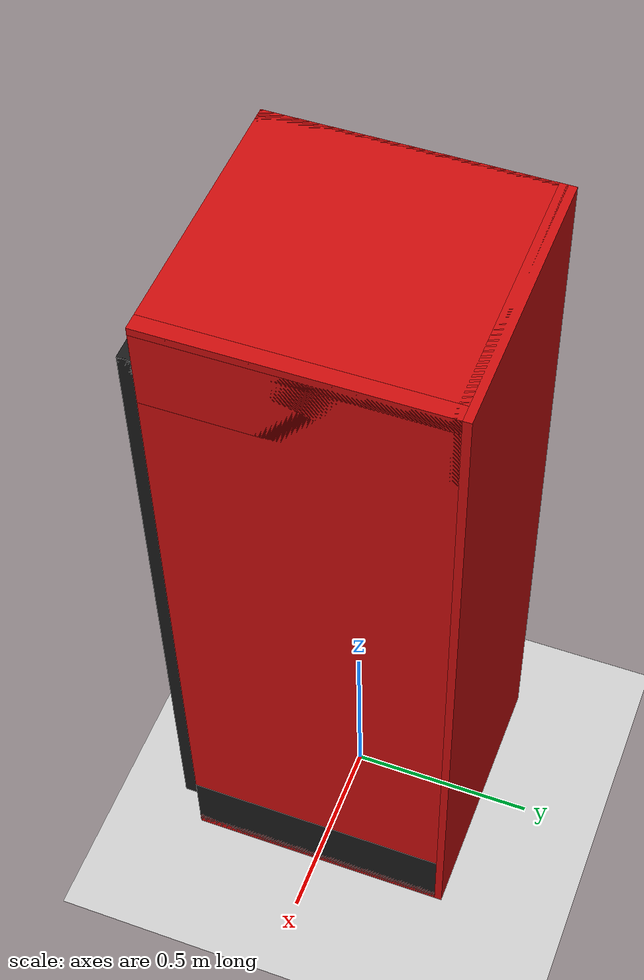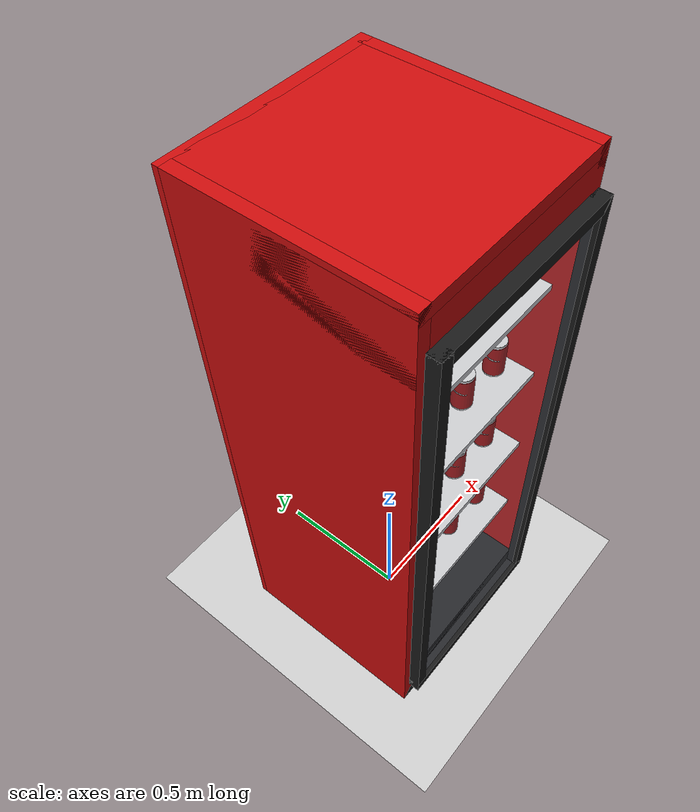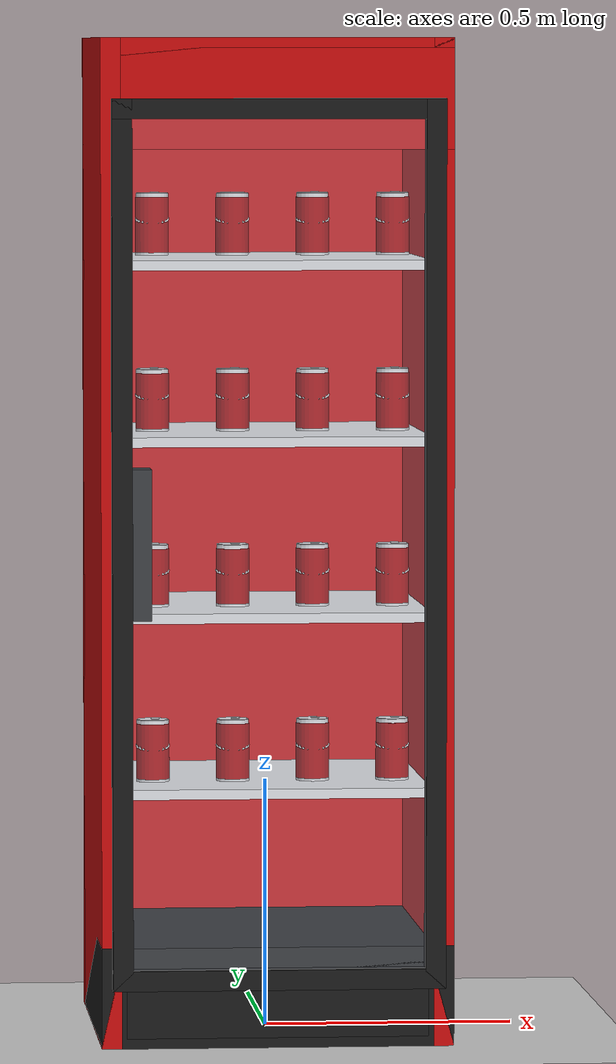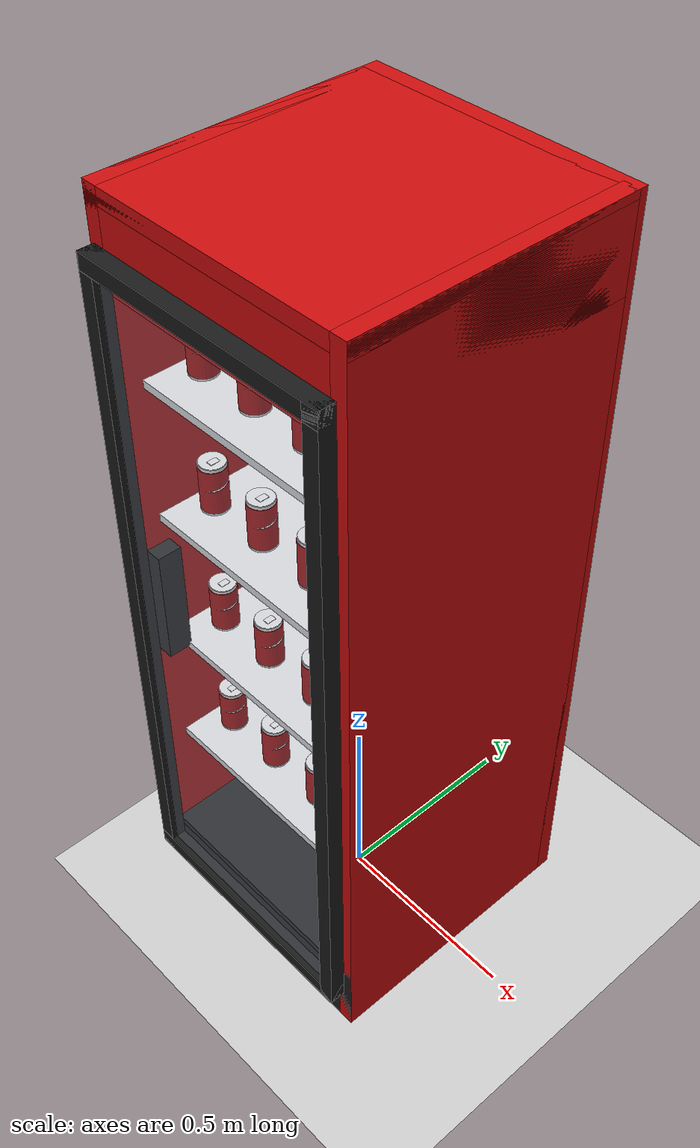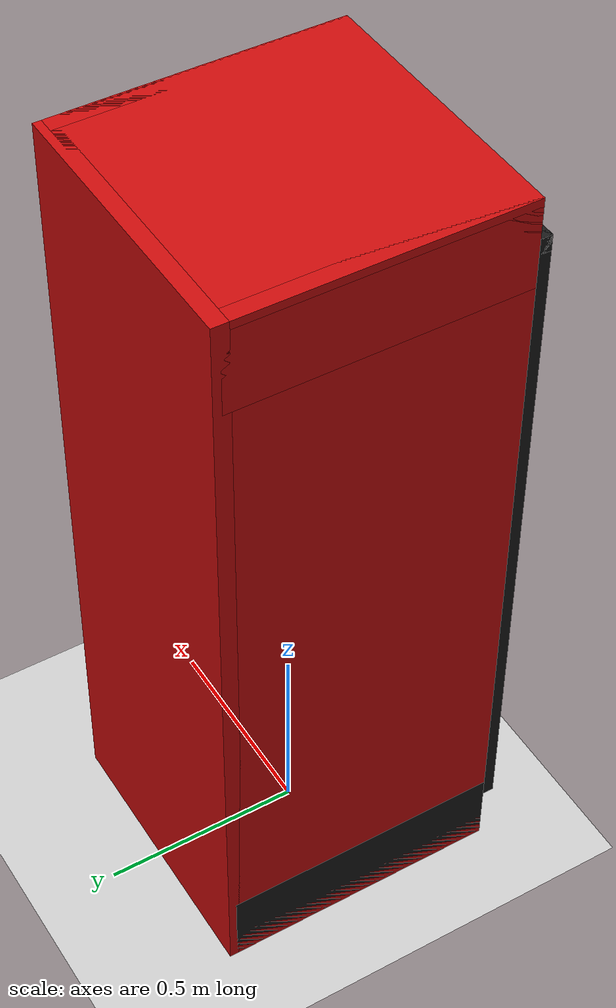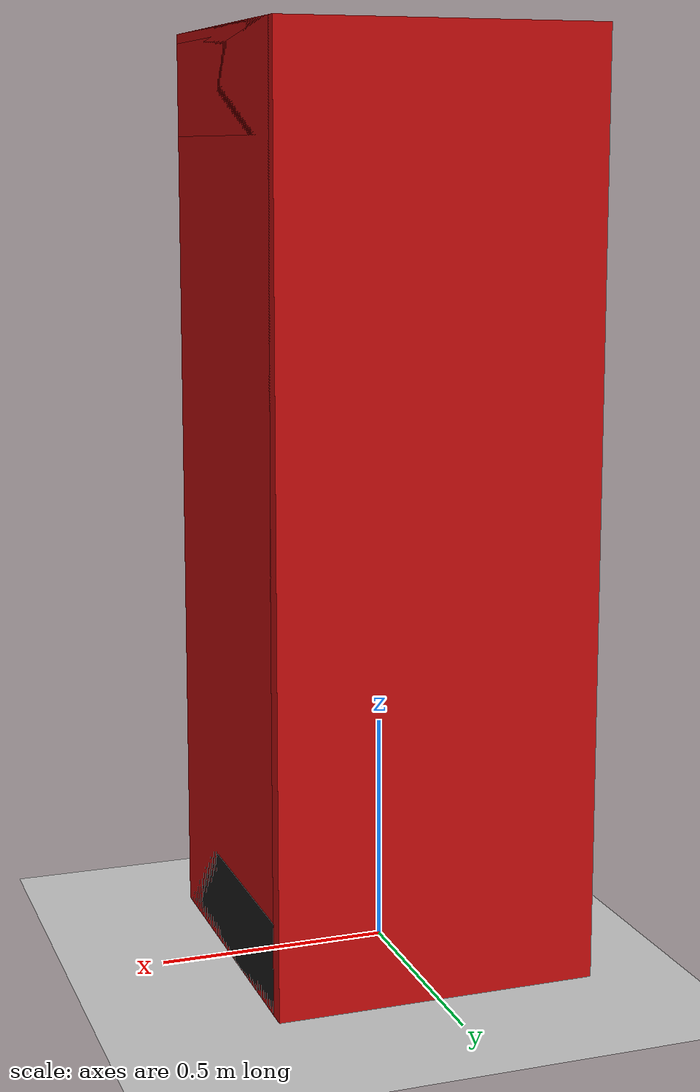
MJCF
<mujoco model="beverage_fridge">
  <compiler angle="degree" coordinate="local"/>
  <option timestep="0.01" gravity="0 0 -9.81"/>

  <visual>
    <headlight ambient="0.6 0.6 0.6"/>
    <global offwidth="1920" offheight="1080"/>
  </visual>

  <asset>
    <texture type="skybox" builtin="gradient" rgb1="0.9 0.9 1" rgb2="1 1 1" width="512" height="512"/>

    <!-- Materials -->
    <!-- Optimized Materials for Realistic Look -->
    <!-- Red Paint: High gloss, slightly metallic automotive finish -->
    <material name="red_paint" rgba="0.8 0.05 0.05 1" specular="0.7" shininess="0.9" reflectance="0.2"/>
    <!-- Black Plastic: Matte/Satin finish for trims -->
    <material name="black_plastic" rgba="0.1 0.1 0.1 1" specular="0.3" shininess="0.3" roughness="0.5"/>
    <!-- Glass: Highly transparent, reflective, slight blue tint -->
    <material name="glass" rgba="0.85 0.9 1 0.2" specular="0.9" shininess="0.95" reflectance="0.3"/>
    <!-- Metal Shelf: Chrome/Steel look, high specular and reflectance -->
    <material name="metal_shelf" rgba="0.9 0.9 0.9 1" specular="0.9" shininess="0.8" reflectance="0.5"/>
    <!-- White Plastic: Clean, glossy interior lining -->
    <material name="white_plastic" rgba="0.95 0.95 0.95 1" specular="0.5" shininess="0.6" reflectance="0.1"/>

    <!-- Drink Materials -->
    <material name="coke_can" rgba="0.8 0 0 1" specular="0.8" shininess="0.8"/>
    <material name="sprite_bottle" rgba="0 0.6 0 0.8" specular="0.9" shininess="0.9"/>
    <material name="water_bottle" rgba="0.7 0.7 1 0.5" specular="0.9" shininess="0.9"/>
    <material name="orange_juice" rgba="1 0.5 0 1" specular="0.1" shininess="0.1"/>

    <!-- New Coke Can Assets -->
    <texture name="can_pattern" type="2d" builtin="checker" rgb1="0.85 0 0" rgb2="0.75 0 0" width="512" height="512" mark="cross" markrgb="0.8 0.8 0.8"/>
    <material name="coke_red" texture="can_pattern" texuniform="true" rgba="0.85 0.0 0.0 1" specular="0.7" shininess="0.8"/>
    <material name="aluminum" rgba="0.9 0.9 0.9 1" specular="0.9" shininess="0.9"/>
    <material name="logo_white" rgba="0.95 0.95 0.95 1" specular="0.5" shininess="0.5"/>
  </asset>

  <actuator>
    <!-- Optimized: gear=57.3 maps 0-120 input to 0-120 degrees (approx 2.1 rad) -->
    <!-- Scaled kp down to 0.15 to maintain effective stiffness (approx 500) with high gear ratio -->
    <position name="door_opener" joint="door_hinge" kp="0.15" ctrlrange="0 120" gear="57.29578"/>
  </actuator>

  <worldbody>
    <light pos="2 2 4" dir="-1 -1 -1" diffuse="0.8 0.8 0.8"/>
    <geom name="floor" type="plane" size="5 5 0.1" material="white_plastic" rgba="0.8 0.8 0.8 1"/>

    <!-- Fridge Root -->
    <body name="fridge" pos="0 0 0">
      <!-- Cabinet Dimensions: 0.7m width, 0.7m depth, 2.0m height -->
      <!-- Center of fridge is at (0,0,1) roughly -->

      <!-- Back Panel -->
      <geom name="back" type="box" size="0.35 0.02 1.0" pos="0 0.35 1.0" material="red_paint"/>

      <!-- Side Panels -->
      <geom name="left_side" type="box" size="0.02 0.35 1.0" pos="-0.33 0 1.0" material="red_paint"/>
      <geom name="right_side" type="box" size="0.02 0.35 1.0" pos="0.33 0 1.0" material="red_paint"/>

      <!-- Top Panel -->
      <geom name="top" type="box" size="0.35 0.35 0.02" pos="0 0 1.98" material="red_paint"/>

      <!-- Bottom Panel (Base/Compressor area) -->
      <geom name="bottom" type="box" size="0.35 0.35 0.1" pos="0 0 0.1" material="black_plastic"/>

      <!-- Top Header (Logo area) -->
      <geom name="header" type="box" size="0.35 0.35 0.1" pos="0 0 1.88" material="red_paint"/>

      <!-- Vent Grill (Visual) -->
      <geom name="vent" type="box" size="0.3 0.01 0.08" pos="0 -0.34 0.1" material="black_plastic"/>

      <!-- Shelves -->
      <!-- Shelf 1 (Bottom) -->
      <geom name="shelf1" type="box" size="0.31 0.3 0.01" pos="0 0 0.5" material="metal_shelf"/>
      <!-- Shelf 2 -->
      <geom name="shelf2" type="box" size="0.31 0.3 0.01" pos="0 0 0.85" material="metal_shelf"/>
      <!-- Shelf 3 -->
      <geom name="shelf3" type="box" size="0.31 0.3 0.01" pos="0 0 1.2" material="metal_shelf"/>
      <!-- Shelf 4 -->
      <geom name="shelf4" type="box" size="0.31 0.3 0.01" pos="0 0 1.55" material="metal_shelf"/>

      <!-- Glass Door -->
      <!-- Moved door slightly forward (y=-0.375) to prevent collision with fridge cabinet front (y=-0.35) -->
      <body name="door" pos="0.33 -0.375 1.0">
        <!-- Added stiffness to keep door closed by default (spring-loaded hinge effect) -->
        <!-- Optimized: Increased damping (8.0) for smooth motion and stiffness (12.0) for firm closing -->
        <joint name="door_hinge" type="hinge" axis="0 0 1" pos="0 0 0" range="0 120" damping="8.0" stiffness="12" springref="0"/>

        <!-- Door Frame -->
        <!-- Left vertical frame (hinge side) -->
        <geom name="door_frame_left" type="box" size="0.02 0.02 0.88" pos="-0.02 0 0" material="black_plastic"/>
        <!-- Right vertical frame -->
        <geom name="door_frame_right" type="box" size="0.02 0.02 0.88" pos="-0.64 0 0" material="black_plastic"/>
        <!-- Top horizontal frame -->
        <geom name="door_frame_top" type="box" size="0.33 0.02 0.02" pos="-0.33 0 0.86" material="black_plastic"/>
        <!-- Bottom horizontal frame -->
        <geom name="door_frame_bottom" type="box" size="0.33 0.02 0.02" pos="-0.33 0 -0.86" material="black_plastic"/>

        <!-- Glass Pane -->
        <geom name="door_glass" type="box" size="0.31 0.005 0.84" pos="-0.33 0 0" material="glass"/>

        <!-- Handle -->
        <geom name="handle" type="box" size="0.02 0.03 0.15" pos="-0.6 0.05 0" material="black_plastic"/>
      </body>
    </body>

        <!-- Beverages (Generated Grid) -->

    <!-- Shelf 1 -->
        <body name="coke_1" pos="-0.240 -0.200 0.580">
      <freejoint />
      <geom name="can_bottom_rim_1" type="cylinder" size="0.033 0.0025" pos="0 0 -0.059" material="aluminum" mass="0.02" />
      <geom name="can_middle_1" type="cylinder" size="0.033 0.055" pos="0 0 -0.0015" material="coke_red" mass="0.30" />
      <geom name="can_top_rim_1" type="cylinder" size="0.032 0.004" pos="0 0 0.0575" material="aluminum" mass="0.02" />
      <geom name="logo_strip_1" type="ellipsoid" size="0.034 0.034 0.015" pos="0 0 0.01" euler="15 0 0" material="logo_white" contype="0" conaffinity="0" mass="0" />
      <geom name="can_top_1" type="cylinder" size="0.031 0.001" pos="0 0 0.0616" material="aluminum" contype="0" conaffinity="0" mass="0.005" />
      <geom name="pull_tab_1" type="box" size="0.008 0.012 0.001" pos="0.005 0 0.063" material="aluminum" contype="0" conaffinity="0" mass="0.001" />
    </body>
    <body name="coke_2" pos="-0.080 -0.200 0.580">
      <freejoint />
      <geom name="can_bottom_rim_2" type="cylinder" size="0.033 0.0025" pos="0 0 -0.059" material="aluminum" mass="0.02" />
      <geom name="can_middle_2" type="cylinder" size="0.033 0.055" pos="0 0 -0.0015" material="coke_red" mass="0.30" />
      <geom name="can_top_rim_2" type="cylinder" size="0.032 0.004" pos="0 0 0.0575" material="aluminum" mass="0.02" />
      <geom name="logo_strip_2" type="ellipsoid" size="0.034 0.034 0.015" pos="0 0 0.01" euler="15 0 0" material="logo_white" contype="0" conaffinity="0" mass="0" />
      <geom name="can_top_2" type="cylinder" size="0.031 0.001" pos="0 0 0.0616" material="aluminum" contype="0" conaffinity="0" mass="0.005" />
      <geom name="pull_tab_2" type="box" size="0.008 0.012 0.001" pos="0.005 0 0.063" material="aluminum" contype="0" conaffinity="0" mass="0.001" />
    </body>
    <body name="coke_3" pos="0.080 -0.200 0.580">
      <freejoint />
      <geom name="can_bottom_rim_3" type="cylinder" size="0.033 0.0025" pos="0 0 -0.059" material="aluminum" mass="0.02" />
      <geom name="can_middle_3" type="cylinder" size="0.033 0.055" pos="0 0 -0.0015" material="coke_red" mass="0.30" />
      <geom name="can_top_rim_3" type="cylinder" size="0.032 0.004" pos="0 0 0.0575" material="aluminum" mass="0.02" />
      <geom name="logo_strip_3" type="ellipsoid" size="0.034 0.034 0.015" pos="0 0 0.01" euler="15 0 0" material="logo_white" contype="0" conaffinity="0" mass="0" />
      <geom name="can_top_3" type="cylinder" size="0.031 0.001" pos="0 0 0.0616" material="aluminum" contype="0" conaffinity="0" mass="0.005" />
      <geom name="pull_tab_3" type="box" size="0.008 0.012 0.001" pos="0.005 0 0.063" material="aluminum" contype="0" conaffinity="0" mass="0.001" />
    </body>
    <body name="coke_4" pos="0.240 -0.200 0.580">
      <freejoint />
      <geom name="can_bottom_rim_4" type="cylinder" size="0.033 0.0025" pos="0 0 -0.059" material="aluminum" mass="0.02" />
      <geom name="can_middle_4" type="cylinder" size="0.033 0.055" pos="0 0 -0.0015" material="coke_red" mass="0.30" />
      <geom name="can_top_rim_4" type="cylinder" size="0.032 0.004" pos="0 0 0.0575" material="aluminum" mass="0.02" />
      <geom name="logo_strip_4" type="ellipsoid" size="0.034 0.034 0.015" pos="0 0 0.01" euler="15 0 0" material="logo_white" contype="0" conaffinity="0" mass="0" />
      <geom name="can_top_4" type="cylinder" size="0.031 0.001" pos="0 0 0.0616" material="aluminum" contype="0" conaffinity="0" mass="0.005" />
      <geom name="pull_tab_4" type="box" size="0.008 0.012 0.001" pos="0.005 0 0.063" material="aluminum" contype="0" conaffinity="0" mass="0.001" />
    </body>
    <body name="coke_5" pos="-0.240 -0.200 0.930">
      <freejoint />
      <geom name="can_bottom_rim_5" type="cylinder" size="0.033 0.0025" pos="0 0 -0.059" material="aluminum" mass="0.02" />
      <geom name="can_middle_5" type="cylinder" size="0.033 0.055" pos="0 0 -0.0015" material="coke_red" mass="0.30" />
      <geom name="can_top_rim_5" type="cylinder" size="0.032 0.004" pos="0 0 0.0575" material="aluminum" mass="0.02" />
      <geom name="logo_strip_5" type="ellipsoid" size="0.034 0.034 0.015" pos="0 0 0.01" euler="15 0 0" material="logo_white" contype="0" conaffinity="0" mass="0" />
      <geom name="can_top_5" type="cylinder" size="0.031 0.001" pos="0 0 0.0616" material="aluminum" contype="0" conaffinity="0" mass="0.005" />
      <geom name="pull_tab_5" type="box" size="0.008 0.012 0.001" pos="0.005 0 0.063" material="aluminum" contype="0" conaffinity="0" mass="0.001" />
    </body>
    <body name="coke_6" pos="-0.080 -0.200 0.930">
      <freejoint />
      <geom name="can_bottom_rim_6" type="cylinder" size="0.033 0.0025" pos="0 0 -0.059" material="aluminum" mass="0.02" />
      <geom name="can_middle_6" type="cylinder" size="0.033 0.055" pos="0 0 -0.0015" material="coke_red" mass="0.30" />
      <geom name="can_top_rim_6" type="cylinder" size="0.032 0.004" pos="0 0 0.0575" material="aluminum" mass="0.02" />
      <geom name="logo_strip_6" type="ellipsoid" size="0.034 0.034 0.015" pos="0 0 0.01" euler="15 0 0" material="logo_white" contype="0" conaffinity="0" mass="0" />
      <geom name="can_top_6" type="cylinder" size="0.031 0.001" pos="0 0 0.0616" material="aluminum" contype="0" conaffinity="0" mass="0.005" />
      <geom name="pull_tab_6" type="box" size="0.008 0.012 0.001" pos="0.005 0 0.063" material="aluminum" contype="0" conaffinity="0" mass="0.001" />
    </body>
    <body name="coke_7" pos="0.080 -0.200 0.930">
      <freejoint />
      <geom name="can_bottom_rim_7" type="cylinder" size="0.033 0.0025" pos="0 0 -0.059" material="aluminum" mass="0.02" />
      <geom name="can_middle_7" type="cylinder" size="0.033 0.055" pos="0 0 -0.0015" material="coke_red" mass="0.30" />
      <geom name="can_top_rim_7" type="cylinder" size="0.032 0.004" pos="0 0 0.0575" material="aluminum" mass="0.02" />
      <geom name="logo_strip_7" type="ellipsoid" size="0.034 0.034 0.015" pos="0 0 0.01" euler="15 0 0" material="logo_white" contype="0" conaffinity="0" mass="0" />
      <geom name="can_top_7" type="cylinder" size="0.031 0.001" pos="0 0 0.0616" material="aluminum" contype="0" conaffinity="0" mass="0.005" />
      <geom name="pull_tab_7" type="box" size="0.008 0.012 0.001" pos="0.005 0 0.063" material="aluminum" contype="0" conaffinity="0" mass="0.001" />
    </body>
    <body name="coke_8" pos="0.240 -0.200 0.930">
      <freejoint />
      <geom name="can_bottom_rim_8" type="cylinder" size="0.033 0.0025" pos="0 0 -0.059" material="aluminum" mass="0.02" />
      <geom name="can_middle_8" type="cylinder" size="0.033 0.055" pos="0 0 -0.0015" material="coke_red" mass="0.30" />
      <geom name="can_top_rim_8" type="cylinder" size="0.032 0.004" pos="0 0 0.0575" material="aluminum" mass="0.02" />
      <geom name="logo_strip_8" type="ellipsoid" size="0.034 0.034 0.015" pos="0 0 0.01" euler="15 0 0" material="logo_white" contype="0" conaffinity="0" mass="0" />
      <geom name="can_top_8" type="cylinder" size="0.031 0.001" pos="0 0 0.0616" material="aluminum" contype="0" conaffinity="0" mass="0.005" />
      <geom name="pull_tab_8" type="box" size="0.008 0.012 0.001" pos="0.005 0 0.063" material="aluminum" contype="0" conaffinity="0" mass="0.001" />
    </body>
    <body name="coke_9" pos="-0.240 -0.200 1.280">
      <freejoint />
      <geom name="can_bottom_rim_9" type="cylinder" size="0.033 0.0025" pos="0 0 -0.059" material="aluminum" mass="0.02" />
      <geom name="can_middle_9" type="cylinder" size="0.033 0.055" pos="0 0 -0.0015" material="coke_red" mass="0.30" />
      <geom name="can_top_rim_9" type="cylinder" size="0.032 0.004" pos="0 0 0.0575" material="aluminum" mass="0.02" />
      <geom name="logo_strip_9" type="ellipsoid" size="0.034 0.034 0.015" pos="0 0 0.01" euler="15 0 0" material="logo_white" contype="0" conaffinity="0" mass="0" />
      <geom name="can_top_9" type="cylinder" size="0.031 0.001" pos="0 0 0.0616" material="aluminum" contype="0" conaffinity="0" mass="0.005" />
      <geom name="pull_tab_9" type="box" size="0.008 0.012 0.001" pos="0.005 0 0.063" material="aluminum" contype="0" conaffinity="0" mass="0.001" />
    </body>
    <body name="coke_10" pos="-0.080 -0.200 1.280">
      <freejoint />
      <geom name="can_bottom_rim_10" type="cylinder" size="0.033 0.0025" pos="0 0 -0.059" material="aluminum" mass="0.02" />
      <geom name="can_middle_10" type="cylinder" size="0.033 0.055" pos="0 0 -0.0015" material="coke_red" mass="0.30" />
      <geom name="can_top_rim_10" type="cylinder" size="0.032 0.004" pos="0 0 0.0575" material="aluminum" mass="0.02" />
      <geom name="logo_strip_10" type="ellipsoid" size="0.034 0.034 0.015" pos="0 0 0.01" euler="15 0 0" material="logo_white" contype="0" conaffinity="0" mass="0" />
      <geom name="can_top_10" type="cylinder" size="0.031 0.001" pos="0 0 0.0616" material="aluminum" contype="0" conaffinity="0" mass="0.005" />
      <geom name="pull_tab_10" type="box" size="0.008 0.012 0.001" pos="0.005 0 0.063" material="aluminum" contype="0" conaffinity="0" mass="0.001" />
    </body>
    <body name="coke_11" pos="0.080 -0.200 1.280">
      <freejoint />
      <geom name="can_bottom_rim_11" type="cylinder" size="0.033 0.0025" pos="0 0 -0.059" material="aluminum" mass="0.02" />
      <geom name="can_middle_11" type="cylinder" size="0.033 0.055" pos="0 0 -0.0015" material="coke_red" mass="0.30" />
      <geom name="can_top_rim_11" type="cylinder" size="0.032 0.004" pos="0 0 0.0575" material="aluminum" mass="0.02" />
      <geom name="logo_strip_11" type="ellipsoid" size="0.034 0.034 0.015" pos="0 0 0.01" euler="15 0 0" material="logo_white" contype="0" conaffinity="0" mass="0" />
      <geom name="can_top_11" type="cylinder" size="0.031 0.001" pos="0 0 0.0616" material="aluminum" contype="0" conaffinity="0" mass="0.005" />
      <geom name="pull_tab_11" type="box" size="0.008 0.012 0.001" pos="0.005 0 0.063" material="aluminum" contype="0" conaffinity="0" mass="0.001" />
    </body>
    <body name="coke_12" pos="0.240 -0.200 1.280">
      <freejoint />
      <geom name="can_bottom_rim_12" type="cylinder" size="0.033 0.0025" pos="0 0 -0.059" material="aluminum" mass="0.02" />
      <geom name="can_middle_12" type="cylinder" size="0.033 0.055" pos="0 0 -0.0015" material="coke_red" mass="0.30" />
      <geom name="can_top_rim_12" type="cylinder" size="0.032 0.004" pos="0 0 0.0575" material="aluminum" mass="0.02" />
      <geom name="logo_strip_12" type="ellipsoid" size="0.034 0.034 0.015" pos="0 0 0.01" euler="15 0 0" material="logo_white" contype="0" conaffinity="0" mass="0" />
      <geom name="can_top_12" type="cylinder" size="0.031 0.001" pos="0 0 0.0616" material="aluminum" contype="0" conaffinity="0" mass="0.005" />
      <geom name="pull_tab_12" type="box" size="0.008 0.012 0.001" pos="0.005 0 0.063" material="aluminum" contype="0" conaffinity="0" mass="0.001" />
    </body>
    <body name="coke_13" pos="-0.240 -0.200 1.630">
      <freejoint />
      <geom name="can_bottom_rim_13" type="cylinder" size="0.033 0.0025" pos="0 0 -0.059" material="aluminum" mass="0.02" />
      <geom name="can_middle_13" type="cylinder" size="0.033 0.055" pos="0 0 -0.0015" material="coke_red" mass="0.30" />
      <geom name="can_top_rim_13" type="cylinder" size="0.032 0.004" pos="0 0 0.0575" material="aluminum" mass="0.02" />
      <geom name="logo_strip_13" type="ellipsoid" size="0.034 0.034 0.015" pos="0 0 0.01" euler="15 0 0" material="logo_white" contype="0" conaffinity="0" mass="0" />
      <geom name="can_top_13" type="cylinder" size="0.031 0.001" pos="0 0 0.0616" material="aluminum" contype="0" conaffinity="0" mass="0.005" />
      <geom name="pull_tab_13" type="box" size="0.008 0.012 0.001" pos="0.005 0 0.063" material="aluminum" contype="0" conaffinity="0" mass="0.001" />
    </body>
    <body name="coke_14" pos="-0.080 -0.200 1.630">
      <freejoint />
      <geom name="can_bottom_rim_14" type="cylinder" size="0.033 0.0025" pos="0 0 -0.059" material="aluminum" mass="0.02" />
      <geom name="can_middle_14" type="cylinder" size="0.033 0.055" pos="0 0 -0.0015" material="coke_red" mass="0.30" />
      <geom name="can_top_rim_14" type="cylinder" size="0.032 0.004" pos="0 0 0.0575" material="aluminum" mass="0.02" />
      <geom name="logo_strip_14" type="ellipsoid" size="0.034 0.034 0.015" pos="0 0 0.01" euler="15 0 0" material="logo_white" contype="0" conaffinity="0" mass="0" />
      <geom name="can_top_14" type="cylinder" size="0.031 0.001" pos="0 0 0.0616" material="aluminum" contype="0" conaffinity="0" mass="0.005" />
      <geom name="pull_tab_14" type="box" size="0.008 0.012 0.001" pos="0.005 0 0.063" material="aluminum" contype="0" conaffinity="0" mass="0.001" />
    </body>
    <body name="coke_15" pos="0.080 -0.200 1.630">
      <freejoint />
      <geom name="can_bottom_rim_15" type="cylinder" size="0.033 0.0025" pos="0 0 -0.059" material="aluminum" mass="0.02" />
      <geom name="can_middle_15" type="cylinder" size="0.033 0.055" pos="0 0 -0.0015" material="coke_red" mass="0.30" />
      <geom name="can_top_rim_15" type="cylinder" size="0.032 0.004" pos="0 0 0.0575" material="aluminum" mass="0.02" />
      <geom name="logo_strip_15" type="ellipsoid" size="0.034 0.034 0.015" pos="0 0 0.01" euler="15 0 0" material="logo_white" contype="0" conaffinity="0" mass="0" />
      <geom name="can_top_15" type="cylinder" size="0.031 0.001" pos="0 0 0.0616" material="aluminum" contype="0" conaffinity="0" mass="0.005" />
      <geom name="pull_tab_15" type="box" size="0.008 0.012 0.001" pos="0.005 0 0.063" material="aluminum" contype="0" conaffinity="0" mass="0.001" />
    </body>
    <body name="coke_16" pos="0.240 -0.200 1.630">
      <freejoint />
      <geom name="can_bottom_rim_16" type="cylinder" size="0.033 0.0025" pos="0 0 -0.059" material="aluminum" mass="0.02" />
      <geom name="can_middle_16" type="cylinder" size="0.033 0.055" pos="0 0 -0.0015" material="coke_red" mass="0.30" />
      <geom name="can_top_rim_16" type="cylinder" size="0.032 0.004" pos="0 0 0.0575" material="aluminum" mass="0.02" />
      <geom name="logo_strip_16" type="ellipsoid" size="0.034 0.034 0.015" pos="0 0 0.01" euler="15 0 0" material="logo_white" contype="0" conaffinity="0" mass="0" />
      <geom name="can_top_16" type="cylinder" size="0.031 0.001" pos="0 0 0.0616" material="aluminum" contype="0" conaffinity="0" mass="0.005" />
      <geom name="pull_tab_16" type="box" size="0.008 0.012 0.001" pos="0.005 0 0.063" material="aluminum" contype="0" conaffinity="0" mass="0.001" />
    </body>

  </worldbody>
</mujoco>
